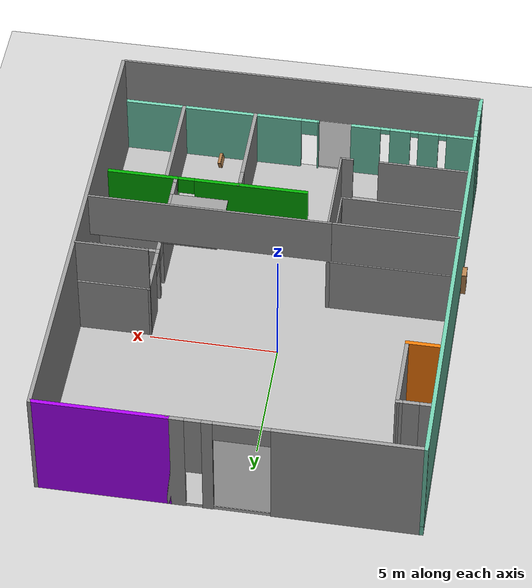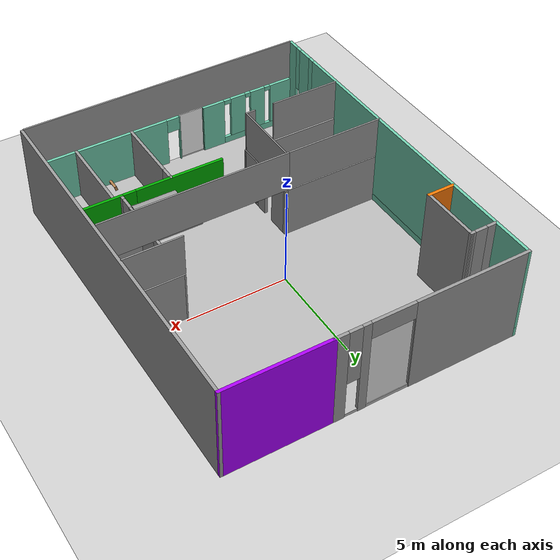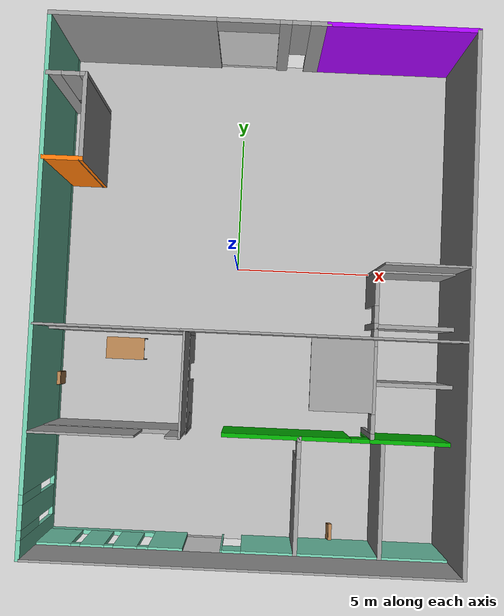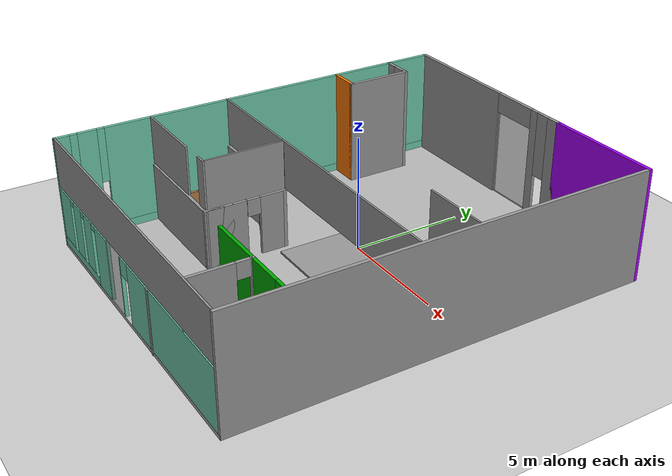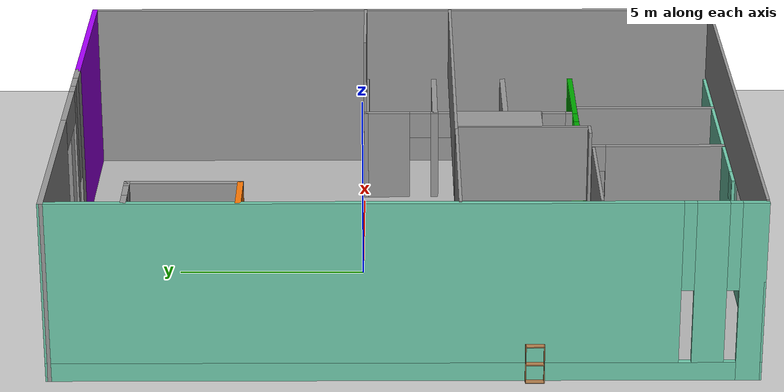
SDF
<sdf version="1.6">
 <world name="default">
  <model name="ground_plane">
   <static>1</static>
   <link name="link">
    <collision name="collision">
     <geometry><plane><normal>0 0 1</normal><size>100 100</size></plane></geometry>
     <surface><friction><ode><mu>100</mu><mu2>50</mu2></ode></friction></surface>
    </collision>
    <visual name="visual">
     <cast_shadows>0</cast_shadows>
     <geometry><plane><normal>0 0 1</normal><size>100 100</size></plane></geometry>
     <material>
      <script><uri>file://media/materials/scripts/gazebo.material</uri><name>Gazebo/Grey</name></script>
     </material>
    </visual>
   </link>
  </model>
  <model name="osrf_elevator">
   <link name="Wall_0">
    <pose>-7.17647 0.013004 0 0 -0 1.57174</pose>
    <visual name="Wall_0_Visual_0">
     <meta><layer>0</layer></meta>
     <pose>-8.72596 0 2.4385 0 -0 0</pose>
     <geometry><box><size>0.663656 0.15 4.877</size></box></geometry>
     <material>
      <script><uri>file://media/materials/scripts/gazebo.material</uri><name>Gazebo/Grey</name></script>
      <ambient>0.435294 0.796078 0.67451 1</ambient>
     </material>
    </visual>
    <collision name="Wall_0_Collision_0">
     <geometry><box><size>0.663656 0.15 4.877</size></box></geometry>
     <pose>-8.72596 0 2.4385 0 -0 0</pose>
    </collision>
    <visual name="Wall_0_Visual_1">
     <meta><layer>0</layer></meta>
     <pose>0.331828 0 0.25 0 -0 0</pose>
     <geometry><box><size>17.4519 0.15 0.5</size></box></geometry>
     <material>
      <script><uri>file://media/materials/scripts/gazebo.material</uri><name>Gazebo/Grey</name></script>
      <ambient>0.435294 0.796078 0.67451 1</ambient>
     </material>
    </visual>
    <collision name="Wall_0_Collision_1">
     <geometry><box><size>17.4519 0.15 0.5</size></box></geometry>
     <pose>0.331828 0 0.25 0 -0 0</pose>
    </collision>
    <visual name="Wall_0_Visual_2">
     <meta><layer>0</layer></meta>
     <pose>-7.67281 0 2.6885 0 -0 0</pose>
     <geometry><box><size>0.816657 0.15 4.377</size></box></geometry>
     <material>
      <script><uri>file://media/materials/scripts/gazebo.material</uri><name>Gazebo/Grey</name></script>
      <ambient>0.435294 0.796078 0.67451 1</ambient>
     </material>
    </visual>
    <collision name="Wall_0_Collision_2">
     <geometry><box><size>0.816657 0.15 4.377</size></box></geometry>
     <pose>-7.67281 0 2.6885 0 -0 0</pose>
    </collision>
    <visual name="Wall_0_Visual_3">
     <meta><layer>0</layer></meta>
     <pose>1.05709 0 2.6885 0 -0 0</pose>
     <geometry><box><size>16.0014 0.15 4.377</size></box></geometry>
     <material>
      <script><uri>file://media/materials/scripts/gazebo.material</uri><name>Gazebo/Grey</name></script>
      <ambient>0.435294 0.796078 0.67451 1</ambient>
     </material>
    </visual>
    <collision name="Wall_0_Collision_3">
     <geometry><box><size>16.0014 0.15 4.377</size></box></geometry>
     <pose>1.05709 0 2.6885 0 -0 0</pose>
    </collision>
    <visual name="Wall_0_Visual_4">
     <meta><layer>0</layer></meta>
     <pose>-8.23763 0 3.6885 0 -0 0</pose>
     <geometry><box><size>0.313 0.15 2.377</size></box></geometry>
     <material>
      <script><uri>file://media/materials/scripts/gazebo.material</uri><name>Gazebo/Grey</name></script>
      <ambient>0.435294 0.796078 0.67451 1</ambient>
     </material>
    </visual>
    <collision name="Wall_0_Collision_4">
     <geometry><box><size>0.313 0.15 2.377</size></box></geometry>
     <pose>-8.23763 0 3.6885 0 -0 0</pose>
    </collision>
    <visual name="Wall_0_Visual_5">
     <meta><layer>0</layer></meta>
     <pose>-7.10405 0 3.6885 0 -0 0</pose>
     <geometry><box><size>0.320861 0.15 2.377</size></box></geometry>
     <material>
      <script><uri>file://media/materials/scripts/gazebo.material</uri><name>Gazebo/Grey</name></script>
      <ambient>0.435294 0.796078 0.67451 1</ambient>
     </material>
    </visual>
    <collision name="Wall_0_Collision_5">
     <geometry><box><size>0.320861 0.15 2.377</size></box></geometry>
     <pose>-7.10405 0 3.6885 0 -0 0</pose>
    </collision>
   </link>
   <link name="Wall_10">
    <pose>3.11003 -4.9485 0 0 -0 0</pose>
    <visual name="Wall_10_Visual_0">
     <meta><layer>0</layer></meta>
     <pose>-1.73626 0 1.3715 0 -0 0</pose>
     <geometry><box><size>4.52747 0.15 2.743</size></box></geometry>
     <material>
      <script><uri>file://media/materials/scripts/gazebo.material</uri><name>Gazebo/Grey</name></script>
      <ambient>0 0.666667 0 1</ambient>
     </material>
    </visual>
    <collision name="Wall_10_Collision_0">
     <geometry><box><size>4.52747 0.15 2.743</size></box></geometry>
     <pose>-1.73626 0 1.3715 0 -0 0</pose>
    </collision>
    <visual name="Wall_10_Visual_1">
     <meta><layer>0</layer></meta>
     <pose>2.58694 0 1.3715 0 -0 0</pose>
     <geometry><box><size>2.82611 0.15 2.743</size></box></geometry>
     <material>
      <script><uri>file://media/materials/scripts/gazebo.material</uri><name>Gazebo/Grey</name></script>
      <ambient>0 0.666667 0 1</ambient>
     </material>
    </visual>
    <collision name="Wall_10_Collision_1">
     <geometry><box><size>2.82611 0.15 2.743</size></box></geometry>
     <pose>2.58694 0 1.3715 0 -0 0</pose>
    </collision>
    <visual name="Wall_10_Visual_2">
     <meta><layer>0</layer></meta>
     <pose>0.85068 0 2.3715 0 -0 0</pose>
     <geometry><box><size>0.646413 0.15 0.743</size></box></geometry>
     <material>
      <script><uri>file://media/materials/scripts/gazebo.material</uri><name>Gazebo/Grey</name></script>
      <ambient>0 0.666667 0 1</ambient>
     </material>
    </visual>
    <collision name="Wall_10_Collision_2">
     <geometry><box><size>0.646413 0.15 0.743</size></box></geometry>
     <pose>0.85068 0 2.3715 0 -0 0</pose>
    </collision>
   </link>
   <link name="Wall_14">
    <pose>1.83803 -6.9775 0 0 -0 1.5708</pose>
    <visual name="Wall_14_Visual_0">
     <meta><layer>0</layer></meta>
     <pose>-0.387674 0 1.3715 0 -0 0</pose>
     <geometry><box><size>3.41138 0.15 2.743</size></box></geometry>
     <material>
      <script><uri>file://media/materials/scripts/gazebo.material</uri><name>Gazebo/Grey</name></script>
      <ambient>1 1 1 1</ambient>
     </material>
    </visual>
    <collision name="Wall_14_Collision_0">
     <geometry><box><size>3.41138 0.15 2.743</size></box></geometry>
     <pose>-0.387674 0 1.3715 0 -0 0</pose>
    </collision>
    <visual name="Wall_14_Visual_1">
     <meta><layer>0</layer></meta>
     <pose>2.00133 0 1.3715 0 -0 0</pose>
     <geometry><box><size>0.184063 0.15 2.743</size></box></geometry>
     <material>
      <script><uri>file://media/materials/scripts/gazebo.material</uri><name>Gazebo/Grey</name></script>
      <ambient>1 1 1 1</ambient>
     </material>
    </visual>
    <collision name="Wall_14_Collision_1">
     <geometry><box><size>0.184063 0.15 2.743</size></box></geometry>
     <pose>2.00133 0 1.3715 0 -0 0</pose>
    </collision>
    <visual name="Wall_14_Visual_2">
     <meta><layer>0</layer></meta>
     <pose>1.61366 0 2.3715 0 -0 0</pose>
     <geometry><box><size>0.591285 0.15 0.743</size></box></geometry>
     <material>
      <script><uri>file://media/materials/scripts/gazebo.material</uri><name>Gazebo/Grey</name></script>
      <ambient>1 1 1 1</ambient>
     </material>
    </visual>
    <collision name="Wall_14_Collision_2">
     <geometry><box><size>0.591285 0.15 0.743</size></box></geometry>
     <pose>1.61366 0 2.3715 0 -0 0</pose>
    </collision>
   </link>
   <link name="Wall_16">
    <collision name="Wall_16_Collision">
     <geometry><box><size>5.12727 0.15 2.743</size></box></geometry>
     <pose>0 0 1.3715 0 -0 0</pose>
    </collision>
    <visual name="Wall_16_Visual">
     <meta><layer>0</layer></meta>
     <pose>0 0 1.3715 0 -0 0</pose>
     <geometry><box><size>5.12727 0.15 2.743</size></box></geometry>
     <material>
      <script><uri>file://media/materials/scripts/gazebo.material</uri><name>Gazebo/Grey</name></script>
      <ambient>1 1 1 1</ambient>
     </material>
    </visual>
    <pose>-4.68247 -1.4425 0 0 -0 0</pose>
   </link>
   <link name="Wall_17">
    <pose>-2.19097 -3.185 0 0 0 -1.56907</pose>
    <visual name="Wall_17_Visual_0">
     <meta><layer>0</layer></meta>
     <pose>-1.22855 0 1.3715 0 -0 0</pose>
     <geometry><box><size>1.17851 0.15 2.743</size></box></geometry>
     <material>
      <script><uri>file://media/materials/scripts/gazebo.material</uri><name>Gazebo/Grey</name></script>
      <ambient>1 1 1 1</ambient>
     </material>
    </visual>
    <collision name="Wall_17_Collision_0">
     <geometry><box><size>1.17851 0.15 2.743</size></box></geometry>
     <pose>-1.22855 0 1.3715 0 -0 0</pose>
    </collision>
    <visual name="Wall_17_Visual_1">
     <meta><layer>0</layer></meta>
     <pose>0.886237 0 1.3715 0 -0 0</pose>
     <geometry><box><size>1.86314 0.15 2.743</size></box></geometry>
     <material>
      <script><uri>file://media/materials/scripts/gazebo.material</uri><name>Gazebo/Grey</name></script>
      <ambient>1 1 1 1</ambient>
     </material>
    </visual>
    <collision name="Wall_17_Collision_1">
     <geometry><box><size>1.86314 0.15 2.743</size></box></geometry>
     <pose>0.886237 0 1.3715 0 -0 0</pose>
    </collision>
    <visual name="Wall_17_Visual_2">
     <meta><layer>0</layer></meta>
     <pose>1.18873 0 1.3715 0 -0 0</pose>
     <geometry><box><size>1.25815 0.15 2.743</size></box></geometry>
     <material>
      <script><uri>file://media/materials/scripts/gazebo.material</uri><name>Gazebo/Grey</name></script>
      <ambient>1 1 1 1</ambient>
     </material>
    </visual>
    <collision name="Wall_17_Collision_2">
     <geometry><box><size>1.25815 0.15 2.743</size></box></geometry>
     <pose>1.18873 0 1.3715 0 -0 0</pose>
    </collision>
    <visual name="Wall_17_Visual_3">
     <meta><layer>0</layer></meta>
     <pose>-0.345304 0 2.3715 0 -0 0</pose>
     <geometry><box><size>0.587991 0.15 0.743</size></box></geometry>
     <material>
      <script><uri>file://media/materials/scripts/gazebo.material</uri><name>Gazebo/Grey</name></script>
      <ambient>1 1 1 1</ambient>
     </material>
    </visual>
    <collision name="Wall_17_Collision_3">
     <geometry><box><size>0.587991 0.15 0.743</size></box></geometry>
     <pose>-0.345304 0 2.3715 0 -0 0</pose>
    </collision>
   </link>
   <link name="Wall_18">
    <collision name="Wall_18_Collision">
     <geometry><box><size>5 0.15 2.743</size></box></geometry>
     <pose>0 0 1.3715 0 -0 0</pose>
    </collision>
    <visual name="Wall_18_Visual">
     <meta><layer>0</layer></meta>
     <pose>0 0 1.3715 0 -0 0</pose>
     <geometry><box><size>5 0.15 2.743</size></box></geometry>
     <material>
      <script><uri>file://media/materials/scripts/gazebo.material</uri><name>Gazebo/Grey</name></script>
      <ambient>1 1 1 1</ambient>
     </material>
    </visual>
    <pose>-4.61297 -4.9275 0 0 -0 3.14159</pose>
   </link>
   <link name="Wall_20">
    <collision name="Wall_20_Collision">
     <geometry><box><size>2.88731 0.15 2.743</size></box></geometry>
     <pose>0 0 1.3715 0 -0 0</pose>
    </collision>
    <visual name="Wall_20_Visual">
     <meta><layer>0</layer></meta>
     <pose>0 0 1.3715 0 -0 0</pose>
     <geometry><box><size>2.88731 0.15 2.743</size></box></geometry>
     <material>
      <script><uri>file://media/materials/scripts/gazebo.material</uri><name>Gazebo/Grey</name></script>
      <ambient>1 1 1 1</ambient>
     </material>
    </visual>
    <pose>5.74253 1.037 0 0 0 -3.1383</pose>
   </link>
   <link name="Wall_21">
    <pose>4.37403 -1.8925 0 0 0 -1.5708</pose>
    <visual name="Wall_21_Visual_0">
     <meta><layer>0</layer></meta>
     <pose>-2.34405 0 1.3715 0 -0 0</pose>
     <geometry><box><size>1.3119 0.15 2.743</size></box></geometry>
     <material>
      <script><uri>file://media/materials/scripts/gazebo.material</uri><name>Gazebo/Grey</name></script>
      <ambient>1 1 1 1</ambient>
     </material>
    </visual>
    <collision name="Wall_21_Collision_0">
     <geometry><box><size>1.3119 0.15 2.743</size></box></geometry>
     <pose>-2.34405 0 1.3715 0 -0 0</pose>
    </collision>
    <visual name="Wall_21_Visual_1">
     <meta><layer>0</layer></meta>
     <pose>-0.970323 0 1.3715 0 -0 0</pose>
     <geometry><box><size>0.213619 0.15 2.743</size></box></geometry>
     <material>
      <script><uri>file://media/materials/scripts/gazebo.material</uri><name>Gazebo/Grey</name></script>
      <ambient>1 1 1 1</ambient>
     </material>
    </visual>
    <collision name="Wall_21_Collision_1">
     <geometry><box><size>0.213619 0.15 2.743</size></box></geometry>
     <pose>-0.970323 0 1.3715 0 -0 0</pose>
    </collision>
    <visual name="Wall_21_Visual_2">
     <meta><layer>0</layer></meta>
     <pose>0.938748 0 1.3715 0 -0 0</pose>
     <geometry><box><size>2.36558 0.15 2.743</size></box></geometry>
     <material>
      <script><uri>file://media/materials/scripts/gazebo.material</uri><name>Gazebo/Grey</name></script>
      <ambient>1 1 1 1</ambient>
     </material>
    </visual>
    <collision name="Wall_21_Collision_2">
     <geometry><box><size>2.36558 0.15 2.743</size></box></geometry>
     <pose>0.938748 0 1.3715 0 -0 0</pose>
    </collision>
    <visual name="Wall_21_Visual_3">
     <meta><layer>0</layer></meta>
     <pose>2.89346 0 1.3715 0 -0 0</pose>
     <geometry><box><size>0.213086 0.15 2.743</size></box></geometry>
     <material>
      <script><uri>file://media/materials/scripts/gazebo.material</uri><name>Gazebo/Grey</name></script>
      <ambient>1 1 1 1</ambient>
     </material>
    </visual>
    <collision name="Wall_21_Collision_3">
     <geometry><box><size>0.213086 0.15 2.743</size></box></geometry>
     <pose>2.89346 0 1.3715 0 -0 0</pose>
    </collision>
    <visual name="Wall_21_Visual_4">
     <meta><layer>0</layer></meta>
     <pose>-1.38262 0 2.3715 0 -0 0</pose>
     <geometry><box><size>0.610969 0.15 0.743</size></box></geometry>
     <material>
      <script><uri>file://media/materials/scripts/gazebo.material</uri><name>Gazebo/Grey</name></script>
      <ambient>1 1 1 1</ambient>
     </material>
    </visual>
    <collision name="Wall_21_Collision_4">
     <geometry><box><size>0.610969 0.15 0.743</size></box></geometry>
     <pose>-1.38262 0 2.3715 0 -0 0</pose>
    </collision>
    <visual name="Wall_21_Visual_5">
     <meta><layer>0</layer></meta>
     <pose>-0.553779 0 2.3715 0 -0 0</pose>
     <geometry><box><size>0.61947 0.15 0.743</size></box></geometry>
     <material>
      <script><uri>file://media/materials/scripts/gazebo.material</uri><name>Gazebo/Grey</name></script>
      <ambient>1 1 1 1</ambient>
     </material>
    </visual>
    <collision name="Wall_21_Collision_5">
     <geometry><box><size>0.61947 0.15 0.743</size></box></geometry>
     <pose>-0.553779 0 2.3715 0 -0 0</pose>
    </collision>
    <visual name="Wall_21_Visual_6">
     <meta><layer>0</layer></meta>
     <pose>2.45423 0 2.3715 0 -0 0</pose>
     <geometry><box><size>0.665375 0.15 0.743</size></box></geometry>
     <material>
      <script><uri>file://media/materials/scripts/gazebo.material</uri><name>Gazebo/Grey</name></script>
      <ambient>1 1 1 1</ambient>
     </material>
    </visual>
    <collision name="Wall_21_Collision_6">
     <geometry><box><size>0.665375 0.15 0.743</size></box></geometry>
     <pose>2.45423 0 2.3715 0 -0 0</pose>
    </collision>
   </link>
   <link name="Wall_23">
    <collision name="Wall_23_Collision">
     <geometry><box><size>2.75 0.15 2.743</size></box></geometry>
     <pose>0 0 1.3715 0 -0 0</pose>
    </collision>
    <visual name="Wall_23_Visual">
     <meta><layer>0</layer></meta>
     <pose>0 0 1.3715 0 -0 0</pose>
     <geometry><box><size>2.75 0.15 2.743</size></box></geometry>
     <material>
      <script><uri>file://media/materials/scripts/gazebo.material</uri><name>Gazebo/Grey</name></script>
      <ambient>1 1 1 1</ambient>
     </material>
    </visual>
    <pose>5.74203 -2.9565 0 0 -0 0</pose>
   </link>
   <link name="Wall_25">
    <collision name="Wall_25_Collision">
     <geometry><box><size>2.75 0.15 2.743</size></box></geometry>
     <pose>0 0 1.3715 0 -0 0</pose>
    </collision>
    <visual name="Wall_25_Visual">
     <meta><layer>0</layer></meta>
     <pose>0 0 1.3715 0 -0 0</pose>
     <geometry><box><size>2.75 0.15 2.743</size></box></geometry>
     <material>
      <script><uri>file://media/materials/scripts/gazebo.material</uri><name>Gazebo/Grey</name></script>
      <ambient>1 1 1 1</ambient>
     </material>
    </visual>
    <pose>5.76203 -0.932496 0 0 -0 0</pose>
   </link>
   <link name="Wall_27">
    <collision name="Wall_27_Collision">
     <geometry><box><size>4 0.15 2.743</size></box></geometry>
     <pose>0 0 1.3715 0 -0 0</pose>
    </collision>
    <visual name="Wall_27_Visual">
     <meta><layer>0</layer></meta>
     <pose>0 0 1.3715 0 -0 0</pose>
     <geometry><box><size>4 0.15 2.743</size></box></geometry>
     <material>
      <script><uri>file://media/materials/scripts/gazebo.material</uri><name>Gazebo/Grey</name></script>
      <ambient>1 1 1 1</ambient>
     </material>
    </visual>
    <pose>4.75503 -7.0125 0 0 -0 1.5708</pose>
   </link>
   <link name="Wall_29">
    <collision name="Wall_29_Collision">
     <geometry><box><size>1.39187 0.15 4.877</size></box></geometry>
     <pose>0 0 2.4385 0 -0 0</pose>
    </collision>
    <visual name="Wall_29_Visual">
     <meta><layer>0</layer></meta>
     <pose>0 0 2.4385 0 -0 0</pose>
     <geometry><box><size>1.39187 0.15 4.877</size></box></geometry>
     <material>
      <script><uri>file://media/materials/scripts/gazebo.material</uri><name>Gazebo/Grey</name></script>
      <ambient>0.996078 0.47451 0.0196078 1</ambient>
     </material>
    </visual>
    <pose>-6.49697 4.1045 0 0 -0 0</pose>
   </link>
   <link name="Wall_30">
    <collision name="Wall_30_Collision">
     <geometry><box><size>3 0.15 4.877</size></box></geometry>
     <pose>0 0 2.4385 0 -0 0</pose>
    </collision>
    <visual name="Wall_30_Visual">
     <meta><layer>0</layer></meta>
     <pose>0 0 2.4385 0 -0 0</pose>
     <geometry><box><size>3 0.15 4.877</size></box></geometry>
     <material>
      <script><uri>file://media/materials/scripts/gazebo.material</uri><name>Gazebo/Grey</name></script>
      <ambient>1 1 1 1</ambient>
     </material>
    </visual>
    <pose>-5.87597 5.5295 0 0 -0 1.5708</pose>
   </link>
   <link name="Wall_31">
    <pose>-6.50397 6.9525 0 0 0 -3.13841</pose>
    <visual name="Wall_31_Visual_0">
     <meta><layer>0</layer></meta>
     <pose>-0.567544 0 2.4385 0 -0 0</pose>
     <geometry><box><size>0.271575 0.15 4.877</size></box></geometry>
     <material>
      <script><uri>file://media/materials/scripts/gazebo.material</uri><name>Gazebo/Grey</name></script>
      <ambient>1 1 1 1</ambient>
     </material>
    </visual>
    <collision name="Wall_31_Collision_0">
     <geometry><box><size>0.271575 0.15 4.877</size></box></geometry>
     <pose>-0.567544 0 2.4385 0 -0 0</pose>
    </collision>
    <visual name="Wall_31_Visual_1">
     <meta><layer>0</layer></meta>
     <pose>0.441678 0 2.4385 0 -0 0</pose>
     <geometry><box><size>0.523307 0.15 4.877</size></box></geometry>
     <material>
      <script><uri>file://media/materials/scripts/gazebo.material</uri><name>Gazebo/Grey</name></script>
      <ambient>1 1 1 1</ambient>
     </material>
    </visual>
    <collision name="Wall_31_Collision_1">
     <geometry><box><size>0.523307 0.15 4.877</size></box></geometry>
     <pose>0.441678 0 2.4385 0 -0 0</pose>
    </collision>
    <visual name="Wall_31_Visual_3">
     <meta><layer>0</layer></meta>
     <pose>-0.125866 0 3.4385 0 -0 0</pose>
     <geometry><box><size>0.611781 0.15 2.877</size></box></geometry>
     <material>
      <script><uri>file://media/materials/scripts/gazebo.material</uri><name>Gazebo/Grey</name></script>
      <ambient>1 1 1 1</ambient>
     </material>
    </visual>
    <collision name="Wall_31_Collision_3">
     <geometry><box><size>0.611781 0.15 2.877</size></box></geometry>
     <pose>-0.125866 0 3.4385 0 -0 0</pose>
    </collision>
   </link>
   <link name="Wall_35">
    <pose>-2.50997 8.9955 0 0 -0 0</pose>
    <visual name="Wall_35_Visual_0">
     <meta><layer>0</layer></meta>
     <pose>-1.92197 0 2.4385 0 -0 0</pose>
     <geometry><box><size>5.65606 0.15 4.877</size></box></geometry>
     <material>
      <script><uri>file://media/materials/scripts/gazebo.material</uri><name>Gazebo/Grey</name></script>
      <ambient>1 1 1 1</ambient>
     </material>
    </visual>
    <collision name="Wall_35_Collision_0">
     <geometry><box><size>5.65606 0.15 4.877</size></box></geometry>
     <pose>-1.92197 0 2.4385 0 -0 0</pose>
    </collision>
    <visual name="Wall_35_Visual_1">
     <meta><layer>0</layer></meta>
     <pose>3.22541 0 2.4385 0 -0 0</pose>
     <geometry><box><size>0.406701 0.15 4.877</size></box></geometry>
     <material>
      <script><uri>file://media/materials/scripts/gazebo.material</uri><name>Gazebo/Grey</name></script>
      <ambient>1 1 1 1</ambient>
     </material>
    </visual>
    <collision name="Wall_35_Collision_1">
     <geometry><box><size>0.406701 0.15 4.877</size></box></geometry>
     <pose>3.22541 0 2.4385 0 -0 0</pose>
    </collision>
    <visual name="Wall_35_Visual_2">
     <meta><layer>0</layer></meta>
     <pose>4.40208 0 2.4385 0 -0 0</pose>
     <geometry><box><size>0.695843 0.15 4.877</size></box></geometry>
     <material>
      <script><uri>file://media/materials/scripts/gazebo.material</uri><name>Gazebo/Grey</name></script>
      <ambient>1 1 1 1</ambient>
     </material>
    </visual>
    <collision name="Wall_35_Collision_2">
     <geometry><box><size>0.695843 0.15 4.877</size></box></geometry>
     <pose>4.40208 0 2.4385 0 -0 0</pose>
    </collision>
    <visual name="Wall_35_Visual_5">
     <meta><layer>0</layer></meta>
     <pose>3.74146 0 3.4385 0 -0 0</pose>
     <geometry><box><size>0.625391 0.15 2.877</size></box></geometry>
     <material>
      <script><uri>file://media/materials/scripts/gazebo.material</uri><name>Gazebo/Grey</name></script>
      <ambient>1 1 1 1</ambient>
     </material>
    </visual>
    <collision name="Wall_35_Collision_5">
     <geometry><box><size>0.625391 0.15 2.877</size></box></geometry>
     <pose>3.74146 0 3.4385 0 -0 0</pose>
    </collision>
    <visual name="Wall_35_Visual_6">
     <meta><layer>0</layer></meta>
     <pose>1.96406 0 4.4385 0 -0 0</pose>
     <geometry><box><size>2.116 0.15 0.877</size></box></geometry>
     <material>
      <script><uri>file://media/materials/scripts/gazebo.material</uri><name>Gazebo/Grey</name></script>
      <ambient>1 1 1 1</ambient>
     </material>
    </visual>
    <collision name="Wall_35_Collision_6">
     <geometry><box><size>2.116 0.15 0.877</size></box></geometry>
     <pose>1.96406 0 4.4385 0 -0 0</pose>
    </collision>
   </link>
   <link name="Wall_36">
    <collision name="Wall_36_Collision">
     <geometry><box><size>5.17 0.15 4.877</size></box></geometry>
     <pose>0 0 2.4385 0 -0 0</pose>
    </collision>
    <visual name="Wall_36_Visual">
     <meta><layer>0</layer></meta>
     <pose>0 0 2.4385 0 -0 0</pose>
     <geometry><box><size>5.17 0.15 4.877</size></box></geometry>
     <material>
      <script><uri>file://media/materials/scripts/gazebo.material</uri><name>Gazebo/Grey</name></script>
      <ambient>0.666667 0 1 1</ambient>
     </material>
    </visual>
    <pose>4.67503 8.9955 0 0 -0 0</pose>
   </link>
   <link name="Wall_5">
    <collision name="Wall_5_Collision">
     <geometry><box><size>18.1152 0.15 4.877</size></box></geometry>
     <pose>0 0 2.4385 0 -0 0</pose>
    </collision>
    <visual name="Wall_5_Visual">
     <meta><layer>0</layer></meta>
     <pose>0 0 2.4385 0 -0 0</pose>
     <geometry><box><size>18.1152 0.15 4.877</size></box></geometry>
     <material>
      <script><uri>file://media/materials/scripts/gazebo.material</uri><name>Gazebo/Grey</name></script>
      <ambient>1 1 1 1</ambient>
     </material>
    </visual>
    <pose>7.18353 0.013004 0 0 0 -1.57096</pose>
   </link>
   <link name="Wall_6">
    <pose>0.007029 -8.9695 0 0 -0 3.14159</pose>
    <visual name="Wall_6_Visual_0">
     <meta><layer>0</layer></meta>
     <pose>-3.60425 0 1.365 0 -0 0</pose>
     <geometry><box><size>7.2915 0.15 2.73</size></box></geometry>
     <material>
      <script><uri>file://media/materials/scripts/gazebo.material</uri><name>Gazebo/Grey</name></script>
      <ambient>0.435294 0.796078 0.67451 1</ambient>
     </material>
    </visual>
    <collision name="Wall_6_Collision_0">
     <geometry><box><size>7.2915 0.15 2.73</size></box></geometry>
     <pose>-3.60425 0 1.365 0 -0 0</pose>
    </collision>
    <visual name="Wall_6_Visual_1">
     <meta><layer>0</layer></meta>
     <pose>0.726241 0 1.365 0 -0 0</pose>
     <geometry><box><size>0.056893 0.15 2.73</size></box></geometry>
     <material>
      <script><uri>file://media/materials/scripts/gazebo.material</uri><name>Gazebo/Grey</name></script>
      <ambient>0.435294 0.796078 0.67451 1</ambient>
     </material>
    </visual>
    <collision name="Wall_6_Collision_1">
     <geometry><box><size>0.056893 0.15 2.73</size></box></geometry>
     <pose>0.726241 0 1.365 0 -0 0</pose>
    </collision>
    <visual name="Wall_6_Visual_2">
     <meta><layer>0</layer></meta>
     <pose>2.65105 0 1.365 0 -0 0</pose>
     <geometry><box><size>1.19273 0.15 2.73</size></box></geometry>
     <material>
      <script><uri>file://media/materials/scripts/gazebo.material</uri><name>Gazebo/Grey</name></script>
      <ambient>0.435294 0.796078 0.67451 1</ambient>
     </material>
    </visual>
    <collision name="Wall_6_Collision_2">
     <geometry><box><size>1.19273 0.15 2.73</size></box></geometry>
     <pose>2.65105 0 1.365 0 -0 0</pose>
    </collision>
    <visual name="Wall_6_Visual_4">
     <meta><layer>0</layer></meta>
     <pose>5.24871 0 0.25 0 -0 0</pose>
     <geometry><box><size>4.00258 0.15 0.5</size></box></geometry>
     <material>
      <script><uri>file://media/materials/scripts/gazebo.material</uri><name>Gazebo/Grey</name></script>
      <ambient>0.435294 0.796078 0.67451 1</ambient>
     </material>
    </visual>
    <collision name="Wall_6_Collision_4">
     <geometry><box><size>4.00258 0.15 0.5</size></box></geometry>
     <pose>5.24871 0 0.25 0 -0 0</pose>
    </collision>
    <visual name="Wall_6_Visual_5">
     <meta><layer>0</layer></meta>
     <pose>4.0419 0 1.615 0 -0 0</pose>
     <geometry><box><size>0.828969 0.15 2.23</size></box></geometry>
     <material>
      <script><uri>file://media/materials/scripts/gazebo.material</uri><name>Gazebo/Grey</name></script>
      <ambient>0.435294 0.796078 0.67451 1</ambient>
     </material>
    </visual>
    <collision name="Wall_6_Collision_5">
     <geometry><box><size>0.828969 0.15 2.23</size></box></geometry>
     <pose>4.0419 0 1.615 0 -0 0</pose>
    </collision>
    <visual name="Wall_6_Visual_6">
     <meta><layer>0</layer></meta>
     <pose>5.18099 0 1.615 0 -0 0</pose>
     <geometry><box><size>0.819207 0.15 2.23</size></box></geometry>
     <material>
      <script><uri>file://media/materials/scripts/gazebo.material</uri><name>Gazebo/Grey</name></script>
      <ambient>0.435294 0.796078 0.67451 1</ambient>
     </material>
    </visual>
    <collision name="Wall_6_Collision_6">
     <geometry><box><size>0.819207 0.15 2.23</size></box></geometry>
     <pose>5.18099 0 1.615 0 -0 0</pose>
    </collision>
    <visual name="Wall_6_Visual_7">
     <meta><layer>0</layer></meta>
     <pose>6.58056 0 1.615 0 -0 0</pose>
     <geometry><box><size>1.33888 0.15 2.23</size></box></geometry>
     <material>
      <script><uri>file://media/materials/scripts/gazebo.material</uri><name>Gazebo/Grey</name></script>
      <ambient>0.435294 0.796078 0.67451 1</ambient>
     </material>
    </visual>
    <collision name="Wall_6_Collision_7">
     <geometry><box><size>1.33888 0.15 2.23</size></box></geometry>
     <pose>6.58056 0 1.615 0 -0 0</pose>
    </collision>
    <visual name="Wall_6_Visual_8">
     <meta><layer>0</layer></meta>
     <pose>0.369648 0 2.365 0 -0 0</pose>
     <geometry><box><size>0.656294 0.15 0.73</size></box></geometry>
     <material>
      <script><uri>file://media/materials/scripts/gazebo.material</uri><name>Gazebo/Grey</name></script>
      <ambient>0.435294 0.796078 0.67451 1</ambient>
     </material>
    </visual>
    <collision name="Wall_6_Collision_8">
     <geometry><box><size>0.656294 0.15 0.73</size></box></geometry>
     <pose>0.369648 0 2.365 0 -0 0</pose>
    </collision>
    <visual name="Wall_6_Visual_9">
     <meta><layer>0</layer></meta>
     <pose>3.43742 0 2.615 0 -0 0</pose>
     <geometry><box><size>0.38 0.15 0.23</size></box></geometry>
     <material>
      <script><uri>file://media/materials/scripts/gazebo.material</uri><name>Gazebo/Grey</name></script>
      <ambient>0.435294 0.796078 0.67451 1</ambient>
     </material>
    </visual>
    <collision name="Wall_6_Collision_9">
     <geometry><box><size>0.38 0.15 0.23</size></box></geometry>
     <pose>3.43742 0 2.615 0 -0 0</pose>
    </collision>
    <visual name="Wall_6_Visual_10">
     <meta><layer>0</layer></meta>
     <pose>4.61389 0 2.615 0 -0 0</pose>
     <geometry><box><size>0.315 0.15 0.23</size></box></geometry>
     <material>
      <script><uri>file://media/materials/scripts/gazebo.material</uri><name>Gazebo/Grey</name></script>
      <ambient>0.435294 0.796078 0.67451 1</ambient>
     </material>
    </visual>
    <collision name="Wall_6_Collision_10">
     <geometry><box><size>0.315 0.15 0.23</size></box></geometry>
     <pose>4.61389 0 2.615 0 -0 0</pose>
    </collision>
    <visual name="Wall_6_Visual_11">
     <meta><layer>0</layer></meta>
     <pose>5.75086 0 2.615 0 -0 0</pose>
     <geometry><box><size>0.320532 0.15 0.23</size></box></geometry>
     <material>
      <script><uri>file://media/materials/scripts/gazebo.material</uri><name>Gazebo/Grey</name></script>
      <ambient>0.435294 0.796078 0.67451 1</ambient>
     </material>
    </visual>
    <collision name="Wall_6_Collision_11">
     <geometry><box><size>0.320532 0.15 0.23</size></box></geometry>
     <pose>5.75086 0 2.615 0 -0 0</pose>
    </collision>
   </link>
   <link name="front_window">
    <pose>-1.42369 -8.99808 1.36421 0 -0 0</pose>
    <collision name="front_window_collision">
     <geometry><box><size>1.37422 0.034702 2.72768</size></box></geometry>
    </collision>
    <visual name="front_window_visual">
     <meta><layer>0</layer></meta>
     <geometry><box><size>1.37422 0.034702 2.72768</size></box></geometry>
     <material><script><name>Gazebo/GreyTransparent</name><uri>__default__</uri></script></material>
    </visual>
   </link>
   <link name="garage_door">
    <pose>-0.536243 9 2 0 -0 0</pose>
    <collision name="collision"><geometry><box><size>2.19515 0.034702 4</size></box></geometry></collision>
    <visual name="visual">
     <meta><layer>0</layer></meta>
     <geometry><box><size>2.19151 0.034702 4</size></box></geometry>
     <material><script><name>Gazebo/GreyTransparent</name><uri>__default__</uri></script></material>
    </visual>
   </link>
   <link name="floor1_part5">
    <pose>-4.65046 -1.39728 3.85794 1.5708 -0 0</pose>
    <collision name="collision"><geometry><box><size>5.03711 2.0998 0.078</size></box></geometry></collision>
    <visual name="visual">
     <meta><layer>1</layer></meta>
     <geometry><box><size>5.03711 2.0998 0.078</size></box></geometry>
     <material><script><name>Gazebo/Grey</name><uri>__default__</uri></script></material>
    </visual>
   </link>
   <link name="floor1_part6">
    <pose>5.71783 1.06705 3.85828 1.5708 -0 0</pose>
    <collision name="collision"><geometry><box><size>2.83967 2.0998 0.078</size></box></geometry></collision>
    <visual name="visual">
     <meta><layer>1</layer></meta>
     <geometry><box><size>2.83967 2.0998 0.078</size></box></geometry>
     <material><script><name>Gazebo/Grey</name><uri>__default__</uri></script></material>
    </visual>
   </link>
   <link name="floor1_part7">
    <pose>2.39941 -1.39058 3.85828 1.5708 -0 0</pose>
    <collision name="collision"><geometry><box><size>9.43026 2.0998 0.078</size></box></geometry></collision>
    <visual name="visual">
     <meta><layer>1</layer></meta>
     <geometry><box><size>9.43026 2.0998 0.078</size></box></geometry>
     <material><script><name>Gazebo/Grey</name><uri>__default__</uri></script></material>
    </visual>
   </link>
   <link name="floor1_part8">
    <pose>0 -9 3.86461 1.5708 -0 0</pose>
    <collision name="collision"><geometry><box><size>14.2592 2.0998 0.078</size></box></geometry></collision>
    <visual name="visual">
     <meta><layer>1</layer></meta>
     <geometry><box><size>14.2592 2.0998 0.078</size></box></geometry>
     <material><script><name>Gazebo/Grey</name><uri>__default__</uri></script></material>
    </visual>
   </link>
   <link name="floor1_part9">
    <pose>-5.36806 -4.90906 3.85794 1.5708 -0 0</pose>
    <collision name="collision"><geometry><box><size>3.47446 2.0998 0.078</size></box></geometry></collision>
    <visual name="visual">
     <meta><layer>1</layer></meta>
     <geometry><box><size>3.47446 2.0998 0.078</size></box></geometry>
     <material><script><name>Gazebo/Grey</name><uri>__default__</uri></script></material>
    </visual>
   </link>
   <link name="floor1_part10">
    <pose>-2.39225 -4.89435 3.85794 1.5708 -0 0</pose>
    <collision name="collision"><geometry><box><size>0.519866 2.0998 0.078</size></box></geometry></collision>
    <visual name="visual">
     <meta><layer>1</layer></meta>
     <geometry><box><size>0.519866 2.0998 0.078</size></box></geometry>
     <material><script><name>Gazebo/Grey</name><uri>__default__</uri></script></material>
    </visual>
   </link>
   <link name="floor1_part11">
    <pose>-2.17305 -3.18058 3.85794 1.5708 0 -1.5708</pose>
    <collision name="collision"><geometry><box><size>3.4917 2.0998 0.078</size></box></geometry></collision>
    <visual name="visual">
     <meta><layer>1</layer></meta>
     <geometry><box><size>3.4917 2.0998 0.078</size></box></geometry>
     <material><script><name>Gazebo/Grey</name><uri>__default__</uri></script></material>
    </visual>
   </link>
   <link name="floor1_part12">
    <pose>3.22506 -2.66914 2.76928 0 -0 0</pose>
    <collision name="collision"><geometry><box><size>2.20229 2.60169 0.078</size></box></geometry></collision>
    <visual name="visual">
     <meta><layer>1</layer></meta>
     <geometry><box><size>2.20229 2.60169 0.078</size></box></geometry>
     <material><script><name>Gazebo/Grey</name><uri>__default__</uri></script></material>
    </visual>
   </link>
   <link name="ground_floor">
    <pose>0 0 0.075 0 -0 0</pose>
    <collision name="collision">
     <geometry><box><size>14.4 18.1 0.15</size></box></geometry>
     <surface><contact><collide_bitmask>1</collide_bitmask></contact></surface>
    </collision>
    <visual name="visual"><geometry><box><size>14.4 18.1 0.15</size></box></geometry></visual>
   </link>
   <static>1</static>
   <pose>0.63083 -1.09505 0 0 -0 0</pose>
  </model>
  <model name="cabinet">
   <static>1</static>
   <link name="cabinet_bottom_plate">
    <inertial>
     <pose>0 0 -1 0 -0 0</pose>
     <inertia><ixx>2.05</ixx><ixy>0</ixy><ixz>0</ixz><iyy>2.05</iyy><iyz>0</iyz><izz>2.05</izz></inertia>
     <mass>25</mass>
    </inertial>
    <collision name="cabinet_bottom_plate_geom">
     <pose>0 0 0.01 0 -0 0</pose>
     <geometry><box><size>0.45 0.45 0.02</size></box></geometry>
    </collision>
    <visual name="cabinet_bottom_plate_geom_visual">
     <pose>0 0 0.01 0 -0 0</pose>
     <geometry><box><size>0.45 0.45 0.02</size></box></geometry>
     <material>
      <script><uri>file://media/materials/scripts/gazebo.material</uri><name>Gazebo/Wood</name></script>
     </material>
    </visual>
    <collision name="cabinet_bottom_plate_geom_cabinet_back_plate">
     <pose>0.235 0 0.51 0 -0 0</pose>
     <geometry><box><size>0.02 0.45 1.02</size></box></geometry>
    </collision>
    <visual name="cabinet_bottom_plate_geom_cabinet_back_plate_visual">
     <pose>0.235 0 0.51 0 -0 0</pose>
     <geometry><box><size>0.02 0.45 1.02</size></box></geometry>
     <material>
      <script><uri>file://media/materials/scripts/gazebo.material</uri><name>Gazebo/Wood</name></script>
     </material>
    </visual>
    <collision name="cabinet_bottom_plate_geom_cabinet_left_plate">
     <pose>0 0.235 0.51 0 -0 0</pose>
     <geometry><box><size>0.45 0.02 1.02</size></box></geometry>
    </collision>
    <visual name="cabinet_bottom_plate_geom_cabinet_left_plate_visual">
     <pose>0 0.235 0.51 0 -0 0</pose>
     <geometry><box><size>0.45 0.02 1.02</size></box></geometry>
     <material>
      <script><uri>file://media/materials/scripts/gazebo.material</uri><name>Gazebo/Wood</name></script>
     </material>
    </visual>
    <collision name="cabinet_bottom_plate_geom_cabinet_middle_plate">
     <pose>0 0 0.51 0 -0 0</pose>
     <geometry><box><size>0.45 0.45 0.02</size></box></geometry>
    </collision>
    <visual name="cabinet_bottom_plate_geom_cabinet_middle_plate_visual">
     <pose>0 0 0.51 0 -0 0</pose>
     <geometry><box><size>0.45 0.45 0.02</size></box></geometry>
     <material>
      <script><uri>file://media/materials/scripts/gazebo.material</uri><name>Gazebo/Wood</name></script>
     </material>
    </visual>
    <collision name="cabinet_bottom_plate_geom_cabinet_right_plate">
     <pose>0 -0.235 0.51 0 -0 0</pose>
     <geometry><box><size>0.45 0.02 1.02</size></box></geometry>
    </collision>
    <visual name="cabinet_bottom_plate_geom_cabinet_right_plate_visual">
     <pose>0 -0.235 0.51 0 -0 0</pose>
     <geometry><box><size>0.45 0.02 1.02</size></box></geometry>
     <material>
      <script><uri>file://media/materials/scripts/gazebo.material</uri><name>Gazebo/Wood</name></script>
     </material>
    </visual>
    <collision name="cabinet_bottom_plate_geom_cabinet_top_plate">
     <pose>0 0 1.01 0 -0 0</pose>
     <geometry><box><size>0.45 0.45 0.02</size></box></geometry>
    </collision>
    <visual name="cabinet_bottom_plate_geom_cabinet_top_plate_visual">
     <pose>0 0 1.01 0 -0 0</pose>
     <geometry><box><size>0.45 0.45 0.02</size></box></geometry>
     <material>
      <script><uri>file://media/materials/scripts/gazebo.material</uri><name>Gazebo/Wood</name></script>
     </material>
    </visual>
   </link>
   <pose>-6.57618 -4.39691 0 0 -0 0</pose>
  </model>
  <model name="wooden_case">
   <link name="base">
    <pose>0 0 0.024 0 -0 0</pose>
    <inertial>
     <pose>-0.022184 0 0.171592 0 -0 0</pose>
     <mass>3.96264</mass>
     <inertia>
      <ixx>0.213536</ixx>
      <ixy>0</ixy>
      <ixz>0.000779377</ixz>
      <iyy>0.0708943</iyy>
      <iyz>0</iyz>
      <izz>0.154604</izz>
     </inertia>
    </inertial>
    <collision name="collision_back">
     <pose>-0.053975 0 0.1778 0 -0 0</pose>
     <geometry><box><size>0.01905 0.5461 0.3175</size></box></geometry>
     <surface>
      <contact>
       <poissons_ratio>0.347</poissons_ratio>
       <elastic_modulus>8.8e+09</elastic_modulus>
       <ode><kp>100000</kp><kd>100</kd><max_vel>100</max_vel><min_depth>0.001</min_depth></ode>
      </contact>
      <friction>
       <torsional>
        <coefficient>1</coefficient>
        <use_patch_radius>0</use_patch_radius>
        <surface_radius>0.01</surface_radius>
       </torsional>
      </friction>
     </surface>
    </collision>
    <visual name="visual_back">
     <pose>-0.053975 0 0.1778 0 -0 0</pose>
     <geometry><box><size>0.01905 0.5461 0.3175</size></box></geometry>
     <material>
      <script><uri>file://media/materials/scripts/gazebo.material</uri><name>Gazebo/Wood</name></script>
     </material>
    </visual>
    <collision name="collision_bottom">
     <pose>0 0 0.009525 0 -0 0</pose>
     <geometry><box><size>0.127 0.5842 0.01905</size></box></geometry>
     <surface>
      <contact>
       <poissons_ratio>0.347</poissons_ratio>
       <elastic_modulus>8.8e+09</elastic_modulus>
       <ode><kp>100000</kp><kd>100</kd><max_vel>100</max_vel><min_depth>0.001</min_depth></ode>
      </contact>
      <friction>
       <torsional>
        <coefficient>1</coefficient>
        <use_patch_radius>0</use_patch_radius>
        <surface_radius>0.01</surface_radius>
       </torsional>
      </friction>
     </surface>
    </collision>
    <visual name="visual_bottom">
     <pose>0 0 0.009525 0 -0 0</pose>
     <geometry><box><size>0.127 0.5842 0.01905</size></box></geometry>
     <material>
      <script><uri>file://media/materials/scripts/gazebo.material</uri><name>Gazebo/Wood</name></script>
     </material>
    </visual>
    <collision name="collision_top">
     <pose>0 0 0.346075 0 -0 0</pose>
     <geometry><box><size>0.127 0.5842 0.01905</size></box></geometry>
     <surface>
      <contact>
       <poissons_ratio>0.347</poissons_ratio>
       <elastic_modulus>8.8e+09</elastic_modulus>
       <ode><kp>100000</kp><kd>100</kd><max_vel>100</max_vel><min_depth>0.001</min_depth></ode>
      </contact>
      <friction>
       <torsional>
        <coefficient>1</coefficient>
        <use_patch_radius>0</use_patch_radius>
        <surface_radius>0.01</surface_radius>
       </torsional>
      </friction>
     </surface>
    </collision>
    <visual name="visual_top">
     <pose>0 0 0.346075 0 -0 0</pose>
     <geometry><box><size>0.127 0.5842 0.01905</size></box></geometry>
     <material>
      <script><uri>file://media/materials/scripts/gazebo.material</uri><name>Gazebo/Wood</name></script>
     </material>
    </visual>
    <collision name="collision_left">
     <pose>0 -0.282575 0.1778 0 -0 0</pose>
     <geometry><box><size>0.127 0.01905 0.3175</size></box></geometry>
     <surface>
      <contact>
       <poissons_ratio>0.347</poissons_ratio>
       <elastic_modulus>8.8e+09</elastic_modulus>
       <ode><kp>100000</kp><kd>100</kd><max_vel>100</max_vel><min_depth>0.001</min_depth></ode>
      </contact>
      <friction>
       <torsional>
        <coefficient>1</coefficient>
        <use_patch_radius>0</use_patch_radius>
        <surface_radius>0.01</surface_radius>
       </torsional>
      </friction>
     </surface>
    </collision>
    <visual name="visual_left">
     <pose>0 -0.282575 0.1778 0 -0 0</pose>
     <geometry><box><size>0.127 0.01905 0.3175</size></box></geometry>
     <material>
      <script><uri>file://media/materials/scripts/gazebo.material</uri><name>Gazebo/Wood</name></script>
     </material>
    </visual>
    <collision name="collision_right">
     <pose>0 0.282575 0.1778 0 -0 0</pose>
     <geometry><box><size>0.127 0.01905 0.3175</size></box></geometry>
     <surface>
      <contact>
       <poissons_ratio>0.347</poissons_ratio>
       <elastic_modulus>8.8e+09</elastic_modulus>
       <ode><kp>100000</kp><kd>100</kd><max_vel>100</max_vel><min_depth>0.001</min_depth></ode>
      </contact>
      <friction>
       <torsional>
        <coefficient>1</coefficient>
        <use_patch_radius>0</use_patch_radius>
        <surface_radius>0.01</surface_radius>
       </torsional>
      </friction>
     </surface>
    </collision>
    <visual name="visual_right">
     <pose>0 0.282575 0.1778 0 -0 0</pose>
     <geometry><box><size>0.127 0.01905 0.3175</size></box></geometry>
     <material>
      <script><uri>file://media/materials/scripts/gazebo.material</uri><name>Gazebo/Wood</name></script>
     </material>
    </visual>
    <collision name="collision_block_left">
     <pose>0.0095 -0.2151 -0.012 0 -0 0</pose>
     <geometry><box><size>0.108 0.05 0.024</size></box></geometry>
     <surface>
      <contact>
       <poissons_ratio>0.347</poissons_ratio>
       <elastic_modulus>8.8e+09</elastic_modulus>
       <ode><kp>100000</kp><kd>100</kd><max_vel>100</max_vel><min_depth>0.001</min_depth></ode>
      </contact>
      <friction>
       <torsional>
        <coefficient>1</coefficient>
        <use_patch_radius>0</use_patch_radius>
        <surface_radius>0.01</surface_radius>
       </torsional>
      </friction>
     </surface>
    </collision>
    <visual name="visual_block_left">
     <pose>0.0095 -0.2151 -0.012 0 -0 0</pose>
     <geometry><box><size>0.108 0.05 0.024</size></box></geometry>
     <material>
      <script><uri>file://media/materials/scripts/gazebo.material</uri><name>Gazebo/Wood</name></script>
     </material>
    </visual>
    <collision name="collision_block_right">
     <pose>0.0095 0.2151 -0.012 0 -0 0</pose>
     <geometry><box><size>0.108 0.05 0.024</size></box></geometry>
     <surface>
      <contact>
       <poissons_ratio>0.347</poissons_ratio>
       <elastic_modulus>8.8e+09</elastic_modulus>
       <ode><kp>100000</kp><kd>100</kd><max_vel>100</max_vel><min_depth>0.001</min_depth></ode>
      </contact>
      <friction>
       <torsional>
        <coefficient>1</coefficient>
        <use_patch_radius>0</use_patch_radius>
        <surface_radius>0.01</surface_radius>
       </torsional>
      </friction>
     </surface>
    </collision>
    <visual name="visual_block_right">
     <pose>0.0095 0.2151 -0.012 0 -0 0</pose>
     <geometry><box><size>0.108 0.05 0.024</size></box></geometry>
     <material>
      <script><uri>file://media/materials/scripts/gazebo.material</uri><name>Gazebo/Wood</name></script>
     </material>
    </visual>
   </link>
   <link name="lid">
    <pose>0.243775 0 0.009525 0 -0 0</pose>
    <inertial>
     <mass>1.97874</mass>
     <inertia>
      <ixx>0.0563367</ixx>
      <ixy>0</ixy>
      <ixz>0</ixz>
      <iyy>0.020911</iyy>
      <iyz>0</iyz>
      <izz>0.0771281</izz>
     </inertia>
    </inertial>
    <collision name="collision">
     <geometry><box><size>0.3556 0.5842 0.01905</size></box></geometry>
     <surface>
      <contact>
       <poissons_ratio>0.347</poissons_ratio>
       <elastic_modulus>8.8e+09</elastic_modulus>
       <ode><kp>100000</kp><kd>100</kd><max_vel>100</max_vel><min_depth>0.001</min_depth></ode>
      </contact>
      <friction>
       <torsional>
        <coefficient>1</coefficient>
        <use_patch_radius>0</use_patch_radius>
        <surface_radius>0.01</surface_radius>
       </torsional>
      </friction>
     </surface>
    </collision>
    <visual name="visual">
     <geometry><box><size>0.3556 0.5842 0.01905</size></box></geometry>
     <material>
      <script><uri>file://media/materials/scripts/gazebo.material</uri><name>Gazebo/Wood</name></script>
     </material>
    </visual>
    <visual name="tee_nut_1">
     <pose>0.122 -0.216 0 0 -0 0</pose>
     <geometry><cylinder><radius>0.00635</radius><length>0.0192405</length></cylinder></geometry>
     <material>
      <script><uri>file://media/materials/scripts/gazebo.material</uri><name>Gazebo/Grey</name></script>
     </material>
    </visual>
    <visual name="tee_nut_2">
     <pose>0.122 -0.088 0 0 -0 0</pose>
     <geometry><cylinder><radius>0.00635</radius><length>0.0192405</length></cylinder></geometry>
     <material>
      <script><uri>file://media/materials/scripts/gazebo.material</uri><name>Gazebo/Grey</name></script>
     </material>
    </visual>
    <visual name="tee_nut_3">
     <pose>0.122 0.088 0 0 -0 0</pose>
     <geometry><cylinder><radius>0.00635</radius><length>0.0192405</length></cylinder></geometry>
     <material>
      <script><uri>file://media/materials/scripts/gazebo.material</uri><name>Gazebo/Grey</name></script>
     </material>
    </visual>
    <visual name="tee_nut_4">
     <pose>0.122 0.216 0 0 -0 0</pose>
     <geometry><cylinder><radius>0.00635</radius><length>0.0192405</length></cylinder></geometry>
     <material>
      <script><uri>file://media/materials/scripts/gazebo.material</uri><name>Gazebo/Grey</name></script>
     </material>
    </visual>
   </link>
   <joint name="lid_hinge" type="revolute">
    <pose>-0.1778 0 0.01905 0 -0 0</pose>
    <parent>base</parent>
    <child>lid</child>
    <axis>
     <xyz>0 1 0</xyz>
     <limit><upper>0.523599</upper><lower>-1.5708</lower></limit>
     <use_parent_model_frame>0</use_parent_model_frame>
     <dynamics><spring_reference>0</spring_reference><spring_stiffness>0</spring_stiffness></dynamics>
    </axis>
   </joint>
   <pose>3.78001 -9.68655 0.035172 -0.00027 0.26542 -0.000137</pose>
  </model>
  <model name="table">
   <static>0</static>
   <link name="link">
    <collision name="surface">
     <pose>0 0 1 0 -0 0</pose>
     <geometry><box><size>1.5 0.8 0.03</size></box></geometry>
     <surface><friction><ode><mu>0.6</mu><mu2>0.6</mu2></ode></friction></surface>
    </collision>
    <visual name="visual1">
     <pose>0 0 1 0 -0 0</pose>
     <geometry><box><size>1.4 0.8 0.04</size></box></geometry>
     <material>
      <script><uri>file://media/materials/scripts/gazebo.material</uri><name>Gazebo/Wood</name></script>
     </material>
    </visual>
    <collision name="front_left_leg">
     <pose>0.68 0.38 0.5 0 -0 0</pose>
     <geometry><cylinder><radius>0.02</radius><length>1</length></cylinder></geometry>
    </collision>
    <visual name="front_left_leg">
     <pose>0.68 0.38 0.5 0 -0 0</pose>
     <geometry><cylinder><radius>0.02</radius><length>1</length></cylinder></geometry>
     <material>
      <script><uri>file://media/materials/scripts/gazebo.material</uri><name>Gazebo/Grey</name></script>
     </material>
    </visual>
    <collision name="front_right_leg">
     <pose>0.68 -0.38 0.5 0 -0 0</pose>
     <geometry><cylinder><radius>0.02</radius><length>1</length></cylinder></geometry>
    </collision>
    <visual name="front_right_leg">
     <pose>0.68 -0.38 0.5 0 -0 0</pose>
     <geometry><cylinder><radius>0.02</radius><length>1</length></cylinder></geometry>
     <material>
      <script><uri>file://media/materials/scripts/gazebo.material</uri><name>Gazebo/Grey</name></script>
     </material>
    </visual>
    <collision name="back_right_leg">
     <pose>-0.68 -0.38 0.5 0 -0 0</pose>
     <geometry><cylinder><radius>0.02</radius><length>1</length></cylinder></geometry>
    </collision>
    <visual name="back_right_leg">
     <pose>-0.68 -0.38 0.5 0 -0 0</pose>
     <geometry><cylinder><radius>0.02</radius><length>1</length></cylinder></geometry>
     <material>
      <script><uri>file://media/materials/scripts/gazebo.material</uri><name>Gazebo/Grey</name></script>
     </material>
    </visual>
    <collision name="back_left_leg">
     <pose>-0.68 0.38 0.5 0 -0 0</pose>
     <geometry><cylinder><radius>0.02</radius><length>1</length></cylinder></geometry>
    </collision>
    <visual name="back_left_leg">
     <pose>-0.68 0.38 0.5 0 -0 0</pose>
     <geometry><cylinder><radius>0.02</radius><length>1</length></cylinder></geometry>
     <material>
      <script><uri>file://media/materials/scripts/gazebo.material</uri><name>Gazebo/Grey</name></script>
     </material>
    </visual>
    <inertial>
     <inertia><ixx>1</ixx><ixy>0</ixy><ixz>0</ixz><iyy>1</iyy><iyz>0</iyz><izz>1</izz></inertia>
     <mass>1</mass>
    </inertial>
   </link>
   <pose>-3.98113 -3.18956 0.149995 -2e-06 4e-06 0</pose>
  </model>
 </world>
</sdf>
